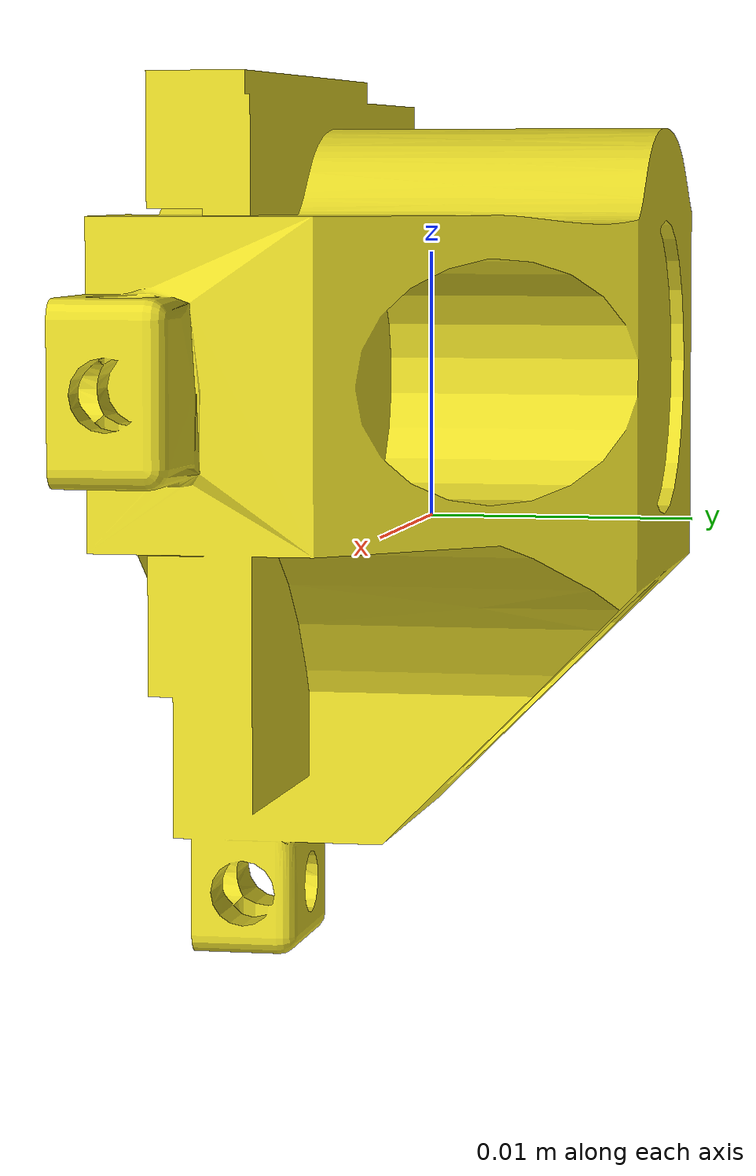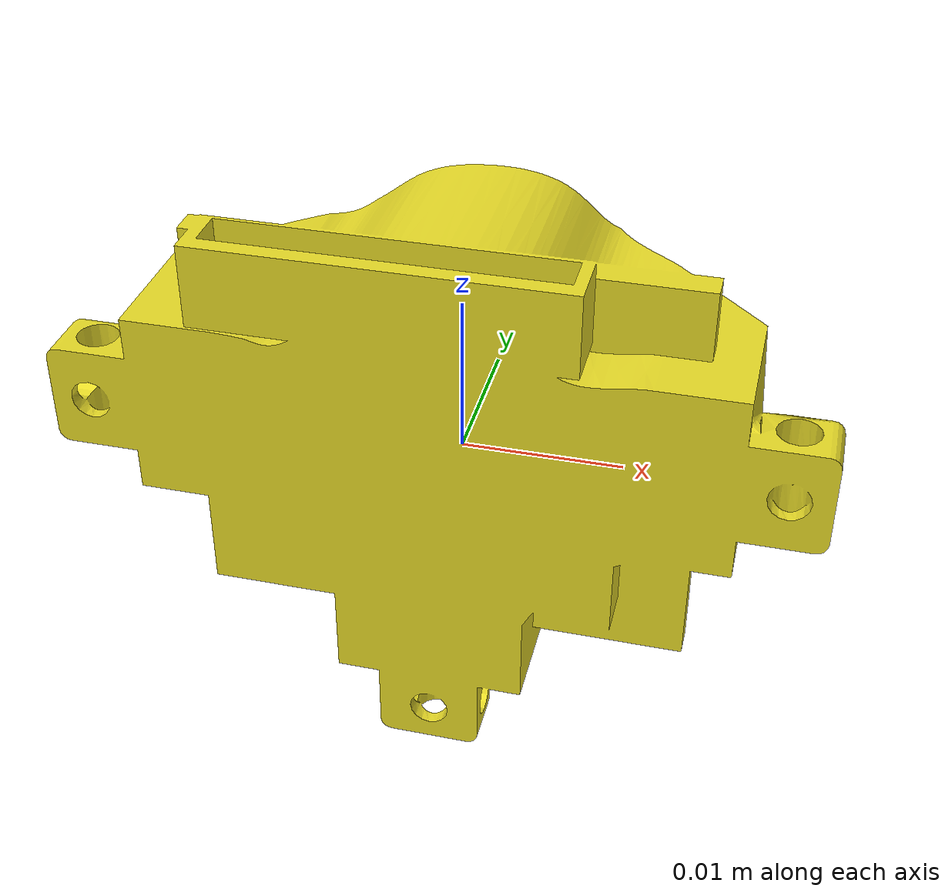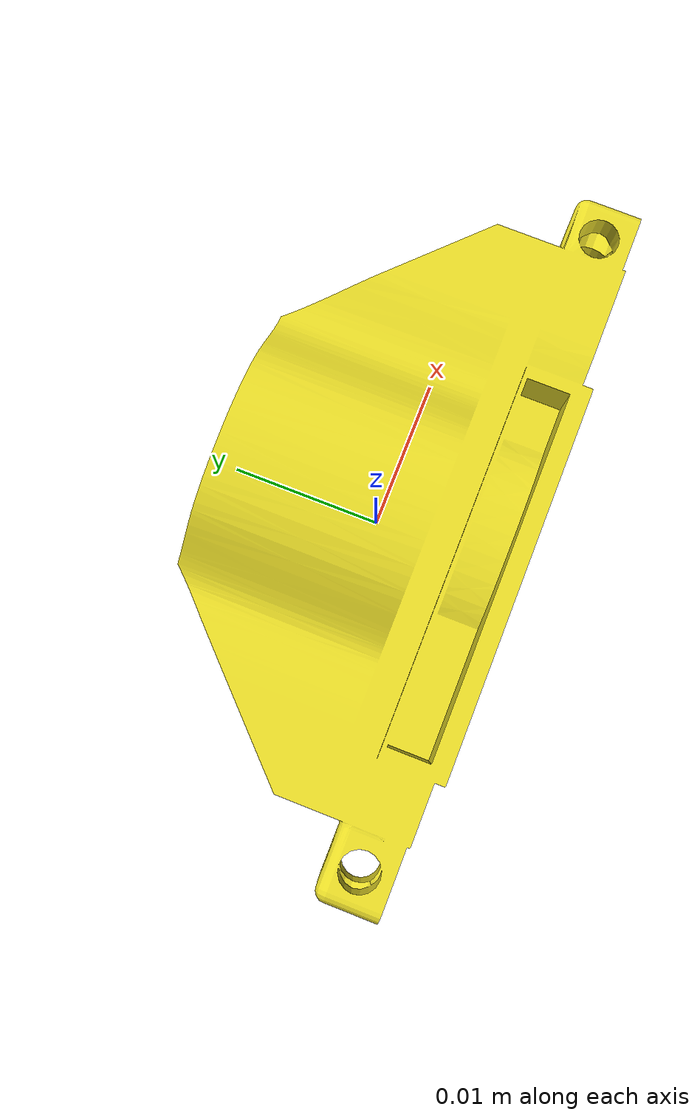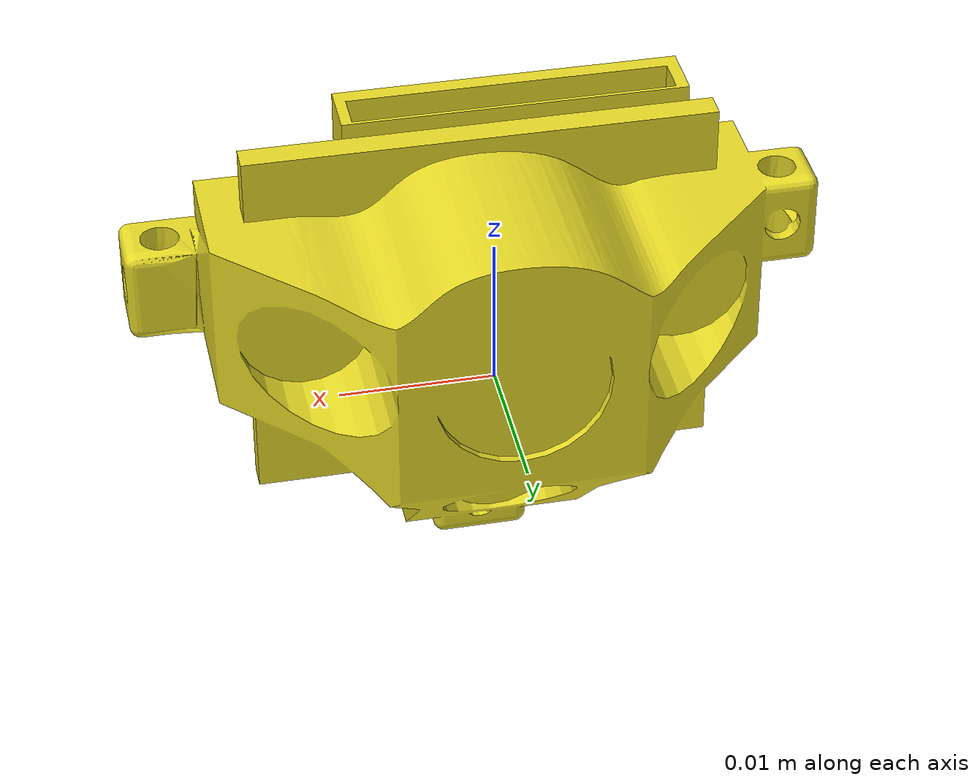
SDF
<?xml version="1.0" ?>
<sdf version="1.5">
  <model name="lidar_ros">
    <link name="link">
      <inertial>
        <pose>0 0 0 0 -0 0</pose>
        <mass>0.01</mass>
        <inertia>
          <ixx>2.1733e-6</ixx>
          <ixy>0</ixy>
          <ixz>0</ixz>
          <iyy>2.1733e-6</iyy>
          <iyz>0</iyz>
          <izz>1.8e-7</izz>
        </inertia>
      </inertial>
      <visual name="visual">
        <geometry>
          <mesh>
            <uri>model://lidar_ros/teraranger.stl</uri>
            <scale>1 1 1</scale>
          </mesh>
        </geometry>
        <material>
          <script>
            <name>Gazebo/Yellow</name>
            <uri>file://media/materials/scripts/gazebo.material</uri>
          </script>
        </material>
      </visual>
      <sensor name="laser" type="ray">
        <update_rate>500</update_rate>
        <pose>0 0 0.008 0 0 1.57</pose>
        <ray>
          <scan>
            <horizontal>
              <samples>1</samples>
              <resolution>1</resolution>
              <min_angle>-0</min_angle>
              <max_angle>0</max_angle>
            </horizontal>
          </scan>
          <range>
            <min>0.06</min>
            <max>14</max>
            <resolution>0.01</resolution>
          </range>
          <noise>
            <type>gaussian</type>
            <mean>0.0</mean>
            <stddev>0.01</stddev>
          </noise>
        </ray>
        <plugin name="laser" filename="libRayPlugin.so" />
              <plugin name="gazebo_ros_head_rplidar_controller" filename="libgazebo_ros_laser.so">
                <topicName>teraranger0/laser/scan</topicName>
                <frameName>lidar0_link</frameName>
      	</plugin>
              <always_on>1</always_on>
              <update_rate>500</update_rate>
              <visualize>true</visualize>
            </sensor>
          </link>
        </model>
</sdf>
